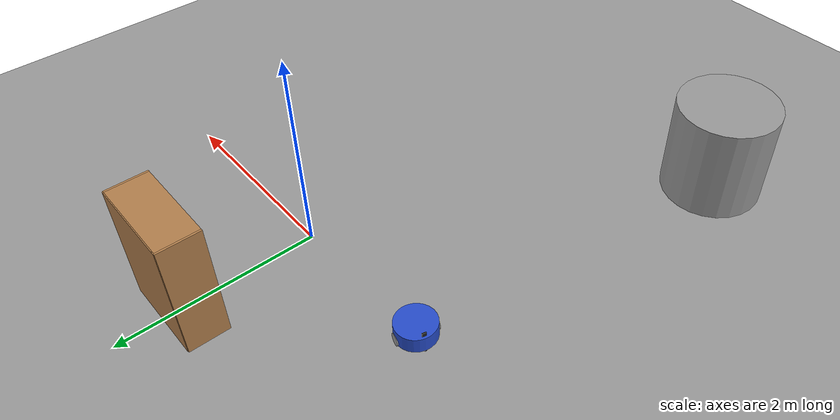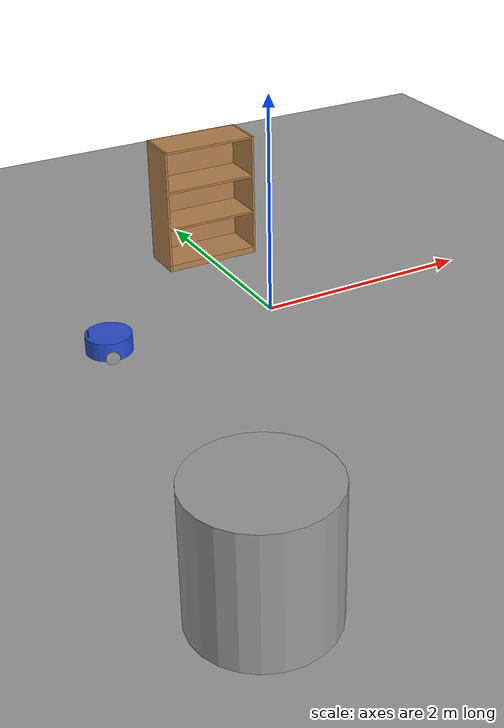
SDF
<sdf version="1.7">
 <world name="default">
  <light name="sun" type="directional">
   <pose>0 0 10 0 -0 0</pose>
   <diffuse>0.8 0.8 0.8 1</diffuse>
   <specular>0.2 0.2 0.2 1</specular>
   <attenuation>
    <range>1000</range>
    <constant>0.9</constant>
    <linear>0.01</linear>
    <quadratic>0.001</quadratic>
   </attenuation>
   <direction>0.5 0.1 -0.9</direction>
   <spot><inner_angle>0</inner_angle><outer_angle>0</outer_angle><falloff>0</falloff></spot>
  </light>
  <scene><ambient>0.4 0.4 0.4 1</ambient><background>0.7 0.7 0.7 1</background><shadows>1</shadows></scene>
  <physics type="ode">
   <max_step_size>0.01</max_step_size>
   <real_time_factor>1</real_time_factor>
   <real_time_update_rate>100</real_time_update_rate>
  </physics>
  <model name="bookshelf">
   <static>1</static>
   <link name="link">
    <inertial><mass>1</mass></inertial>
    <collision name="back">
     <pose>0 0.005 0.6 0 -0 0</pose>
     <geometry><box><size>0.9 0.01 1.2</size></box></geometry>
    </collision>
    <visual name="visual1">
     <pose>0 0.005 0.6 0 -0 0</pose>
     <geometry><box><size>0.9 0.01 1.2</size></box></geometry>
     <material>
      <script><uri>file://media/materials/scripts/gazebo.material</uri><name>Gazebo/Wood</name></script>
     </material>
    </visual>
    <collision name="left_side">
     <pose>0.45 -0.195 0.6 0 -0 0</pose>
     <geometry><box><size>0.02 0.4 1.2</size></box></geometry>
    </collision>
    <visual name="visual2">
     <pose>0.45 -0.195 0.6 0 -0 0</pose>
     <geometry><box><size>0.02 0.4 1.2</size></box></geometry>
     <material>
      <script><uri>file://media/materials/scripts/gazebo.material</uri><name>Gazebo/Wood</name></script>
     </material>
    </visual>
    <collision name="right_side">
     <pose>-0.45 -0.195 0.6 0 -0 0</pose>
     <geometry><box><size>0.02 0.4 1.2</size></box></geometry>
    </collision>
    <visual name="visual3">
     <pose>-0.45 -0.195 0.6 0 -0 0</pose>
     <geometry><box><size>0.02 0.4 1.2</size></box></geometry>
     <material>
      <script><uri>file://media/materials/scripts/gazebo.material</uri><name>Gazebo/Wood</name></script>
     </material>
    </visual>
    <collision name="bottom">
     <pose>0 -0.195 0.03 0 -0 0</pose>
     <geometry><box><size>0.88 0.4 0.06</size></box></geometry>
    </collision>
    <visual name="visual4">
     <pose>0 -0.195 0.03 0 -0 0</pose>
     <geometry><box><size>0.88 0.4 0.06</size></box></geometry>
     <material>
      <script><uri>file://media/materials/scripts/gazebo.material</uri><name>Gazebo/Wood</name></script>
     </material>
    </visual>
    <collision name="top">
     <pose>0 -0.195 1.19 0 -0 0</pose>
     <geometry><box><size>0.88 0.4 0.02</size></box></geometry>
    </collision>
    <visual name="visual5">
     <pose>0 -0.195 1.19 0 -0 0</pose>
     <geometry><box><size>0.88 0.4 0.02</size></box></geometry>
     <material>
      <script><uri>file://media/materials/scripts/gazebo.material</uri><name>Gazebo/Wood</name></script>
     </material>
    </visual>
    <collision name="low_shelf">
     <pose>0 -0.195 0.43 0 -0 0</pose>
     <geometry><box><size>0.88 0.4 0.02</size></box></geometry>
    </collision>
    <visual name="visual6">
     <pose>0 -0.195 0.43 0 -0 0</pose>
     <geometry><box><size>0.88 0.4 0.02</size></box></geometry>
     <material>
      <script><uri>file://media/materials/scripts/gazebo.material</uri><name>Gazebo/Wood</name></script>
     </material>
    </visual>
    <collision name="high_shelf">
     <pose>0 -0.195 0.8 0 -0 0</pose>
     <geometry><box><size>0.88 0.4 0.02</size></box></geometry>
    </collision>
    <visual name="visual7">
     <pose>0 -0.195 0.8 0 -0 0</pose>
     <geometry><box><size>0.88 0.4 0.02</size></box></geometry>
     <material>
      <script><uri>file://media/materials/scripts/gazebo.material</uri><name>Gazebo/Wood</name></script>
     </material>
    </visual>
    <velocity_decay><linear>0</linear><angular>0</angular></velocity_decay>
   </link>
   <pose>0 1.53026 0 0 -0 0</pose>
  </model>
  <model name="ground_plane_0">
   <static>1</static>
   <link name="link">
    <collision name="collision">
     <geometry><plane><normal>0 0 1</normal><size>100 100</size></plane></geometry>
     <surface><friction><ode><mu>100</mu><mu2>50</mu2></ode></friction></surface>
    </collision>
    <visual name="visual">
     <cast_shadows>0</cast_shadows>
     <geometry><plane><normal>0 0 1</normal><size>100 100</size></plane></geometry>
     <material>
      <script><uri>file://media/materials/scripts/gazebo.material</uri><name>Gazebo/Grey</name></script>
     </material>
    </visual>
    <velocity_decay><linear>0</linear><angular>0</angular></velocity_decay>
   </link>
   <pose>0.497681 0 0 0 -0 0</pose>
  </model>
  <model name="unit_cylinder_1">
   <pose>-2 -3.4888 0.49912 -0 -0 -0</pose>
   <link name="link">
    <inertial>
     <mass>1</mass>
     <inertia><ixx>1</ixx><ixy>0</ixy><ixz>0</ixz><iyy>1</iyy><iyz>0</iyz><izz>1</izz></inertia>
    </inertial>
    <collision name="collision">
     <geometry><cylinder><radius>0.5</radius><length>1</length></cylinder></geometry>
    </collision>
    <visual name="visual">
     <geometry><cylinder><radius>0.5</radius><length>1</length></cylinder></geometry>
     <material>
      <script><uri>file://media/materials/scripts/gazebo.material</uri><name>Gazebo/Grey</name></script>
     </material>
    </visual>
    <velocity_decay><linear>0</linear><angular>0</angular></velocity_decay>
   </link>
   <static>0</static>
  </model>
  <gravity>0 0 -9.8</gravity>
  <magnetic_field>6e-06 2.3e-05 -4.2e-05</magnetic_field>
  <atmosphere type="adiabatic"/>
  <spherical_coordinates>
   <surface_model>EARTH_WGS84</surface_model>
   <latitude_deg>0</latitude_deg>
   <longitude_deg>0</longitude_deg>
   <elevation>0</elevation>
   <heading_deg>0</heading_deg>
  </spherical_coordinates>
  <model name="mrobot">
   <link name="base_footprint">
    <inertial>
     <pose>0.015455 0 0.119091 0 -0 0</pose>
     <mass>1.1</mass>
     <inertia>
      <ixx>0.0230424</ixx>
      <ixy>0</ixy>
      <ixz>-0.00154545</ixz>
      <iyy>0.0256697</iyy>
      <iyz>0</iyz>
      <izz>0.0326273</izz>
     </inertia>
    </inertial>
    <collision name="base_footprint_fixed_joint_lump__base_link_collision">
     <pose>0 0 0.11 0 -0 0</pose>
     <geometry><cylinder><length>0.16</length><radius>0.2</radius></cylinder></geometry>
    </collision>
    <collision name="base_footprint_fixed_joint_lump__camera_link_collision_1">
     <pose>0.17 0 0.21 0 -0 0</pose>
     <geometry><box><size>0.01 0.04 0.04</size></box></geometry>
    </collision>
    <visual name="base_footprint_visual"><geometry><box><size>0.001 0.001 0.001</size></box></geometry></visual>
    <visual name="base_footprint_fixed_joint_lump__base_link_visual_1">
     <pose>0 0 0.11 0 -0 0</pose>
     <geometry><cylinder><length>0.16</length><radius>0.2</radius></cylinder></geometry>
     <material>
      <script><name>Gazebo/Blue</name><uri>file://media/materials/scripts/gazebo.material</uri></script>
     </material>
    </visual>
    <visual name="base_footprint_fixed_joint_lump__camera_link_visual_2">
     <pose>0.17 0 0.21 0 -0 0</pose>
     <geometry><box><size>0.01 0.04 0.04</size></box></geometry>
     <material>
      <script><name>Gazebo/Black</name><uri>file://media/materials/scripts/gazebo.material</uri></script>
     </material>
    </visual>
    <sensor name="camera_node" type="camera">
     <update_rate>30</update_rate>
     <camera name="head">
      <horizontal_fov>1.39626</horizontal_fov>
      <image><width>1280</width><height>720</height><format>R8G8B8</format></image>
      <clip><near>0.02</near><far>300</far></clip>
      <noise><type>gaussian</type><mean>0</mean><stddev>0.007</stddev></noise>
     </camera>
     <plugin name="gazebo_camera" filename="libgazebo_ros_camera.so">
      <alwaysOn>1</alwaysOn>
      <updateRate>0.0</updateRate>
      <cameraName>/camera</cameraName>
      <imageTopicName>image_raw</imageTopicName>
      <cameraInfoTopicName>camera_info</cameraInfoTopicName>
      <frameName>camera_link</frameName>
      <hackBaseline>0.07</hackBaseline>
      <distortionK1>0.0</distortionK1>
      <distortionK2>0.0</distortionK2>
      <distortionK3>0.0</distortionK3>
      <distortionT1>0.0</distortionT1>
      <distortionT2>0.0</distortionT2>
      <robotNamespace>/</robotNamespace>
     </plugin>
     <pose>0.17 0 0.21 0 -0 0</pose>
    </sensor>
   </link>
   <joint name="back_caster_joint" type="revolute">
    <pose relative_to="base_footprint">0.18 0 0.015 0 -0 0</pose>
    <parent>base_footprint</parent>
    <child>back_caster_link</child>
    <axis>
     <xyz>0 1 0</xyz>
     <limit><lower>-1e+16</lower><upper>1e+16</upper></limit>
     <dynamics><spring_reference>0</spring_reference><spring_stiffness>0</spring_stiffness></dynamics>
    </axis>
   </joint>
   <link name="back_caster_link">
    <pose relative_to="back_caster_joint">0 0 0 0 -0 0</pose>
    <inertial>
     <mass>0.2</mass>
     <inertia><ixx>1.8e-05</ixx><ixy>0</ixy><ixz>0</ixz><iyy>1.8e-05</iyy><iyz>0</iyz><izz>1.8e-05</izz></inertia>
    </inertial>
    <collision name="back_caster_link_collision">
     <geometry><sphere><radius>0.015</radius></sphere></geometry>
    </collision>
    <visual name="back_caster_link_visual">
     <geometry><sphere><radius>0.015</radius></sphere></geometry>
     <material>
      <script><name>Gazebo/Black</name><uri>file://media/materials/scripts/gazebo.material</uri></script>
     </material>
    </visual>
   </link>
   <joint name="front_caster_joint" type="revolute">
    <pose relative_to="base_footprint">-0.18 0 0.015 0 -0 0</pose>
    <parent>base_footprint</parent>
    <child>front_caster_link</child>
    <axis>
     <xyz>0 1 0</xyz>
     <limit><lower>-1e+16</lower><upper>1e+16</upper></limit>
     <dynamics><spring_reference>0</spring_reference><spring_stiffness>0</spring_stiffness></dynamics>
    </axis>
   </joint>
   <link name="front_caster_link">
    <pose relative_to="front_caster_joint">0 0 0 0 -0 0</pose>
    <inertial>
     <mass>0.2</mass>
     <inertia><ixx>1.8e-05</ixx><ixy>0</ixy><ixz>0</ixz><iyy>1.8e-05</iyy><iyz>0</iyz><izz>1.8e-05</izz></inertia>
    </inertial>
    <collision name="front_caster_link_collision">
     <geometry><sphere><radius>0.015</radius></sphere></geometry>
    </collision>
    <visual name="front_caster_link_visual">
     <geometry><sphere><radius>0.015</radius></sphere></geometry>
     <material>
      <script><name>Gazebo/Black</name><uri>file://media/materials/scripts/gazebo.material</uri></script>
     </material>
    </visual>
   </link>
   <joint name="left_wheel_joint" type="revolute">
    <pose relative_to="base_footprint">0 0.19 0.06 0 -0 0</pose>
    <parent>base_footprint</parent>
    <child>left_wheel_link</child>
    <axis>
     <xyz>0 1 0</xyz>
     <limit><lower>-1e+16</lower><upper>1e+16</upper></limit>
     <dynamics><spring_reference>0</spring_reference><spring_stiffness>0</spring_stiffness></dynamics>
    </axis>
   </joint>
   <link name="left_wheel_link">
    <pose relative_to="left_wheel_joint">0 0 0 0 -0 0</pose>
    <inertial>
     <mass>0.2</mass>
     <inertia>
      <ixx>0.000190417</ixx>
      <ixy>0</ixy>
      <ixz>0</ixz>
      <iyy>0.000190417</iyy>
      <iyz>0</iyz>
      <izz>0.00036</izz>
     </inertia>
    </inertial>
    <collision name="left_wheel_link_collision">
     <pose>0 0 0 1.5708 -0 0</pose>
     <geometry><cylinder><length>0.025</length><radius>0.06</radius></cylinder></geometry>
    </collision>
    <visual name="left_wheel_link_visual">
     <pose>0 0 0 1.5708 -0 0</pose>
     <geometry><cylinder><length>0.025</length><radius>0.06</radius></cylinder></geometry>
     <material>
      <script><name>Gazebo/Gray</name><uri>file://media/materials/scripts/gazebo.material</uri></script>
     </material>
    </visual>
   </link>
   <joint name="right_wheel_joint" type="revolute">
    <pose relative_to="base_footprint">0 -0.19 0.06 0 -0 0</pose>
    <parent>base_footprint</parent>
    <child>right_wheel_link</child>
    <axis>
     <xyz>0 1 0</xyz>
     <limit><lower>-1e+16</lower><upper>1e+16</upper></limit>
     <dynamics><spring_reference>0</spring_reference><spring_stiffness>0</spring_stiffness></dynamics>
    </axis>
   </joint>
   <link name="right_wheel_link">
    <pose relative_to="right_wheel_joint">0 0 0 0 -0 0</pose>
    <inertial>
     <mass>0.2</mass>
     <inertia>
      <ixx>0.000190417</ixx>
      <ixy>0</ixy>
      <ixz>0</ixz>
      <iyy>0.000190417</iyy>
      <iyz>0</iyz>
      <izz>0.00036</izz>
     </inertia>
    </inertial>
    <collision name="right_wheel_link_collision">
     <pose>0 0 0 1.5708 -0 0</pose>
     <geometry><cylinder><length>0.025</length><radius>0.06</radius></cylinder></geometry>
    </collision>
    <visual name="right_wheel_link_visual">
     <pose>0 0 0 1.5708 -0 0</pose>
     <geometry><cylinder><length>0.025</length><radius>0.06</radius></cylinder></geometry>
     <material>
      <script><name>Gazebo/Gray</name><uri>file://media/materials/scripts/gazebo.material</uri></script>
     </material>
    </visual>
   </link>
   <plugin name="differential_drive_controller" filename="libgazebo_ros_diff_drive.so">
    <rosDebugLevel>Debug</rosDebugLevel>
    <publishWheelTF>1</publishWheelTF>
    <robotNamespace>/</robotNamespace>
    <publishTf>1</publishTf>
    <publishOdomTF>1</publishOdomTF>
    <publishWheelJointState>1</publishWheelJointState>
    <alwaysOn>1</alwaysOn>
    <updateRate>100.0</updateRate>
    <legacyMode>1</legacyMode>
    <leftJoint>left_wheel_joint</leftJoint>
    <rightJoint>right_wheel_joint</rightJoint>
    <wheelSeparation>0.38</wheelSeparation>
    <wheelDiameter>0.12</wheelDiameter>
    <broadcastTF>1</broadcastTF>
    <wheelTorque>30</wheelTorque>
    <wheelAcceleration>1.8</wheelAcceleration>
    <commandTopic>cmd_vel</commandTopic>
    <odometryFrame>odom</odometryFrame>
    <odometryTopic>odom</odometryTopic>
    <odometrySourece>1</odometrySourece>
    <robotBaseFrame>base_footprint</robotBaseFrame>
   </plugin>
   <frame name="camera_joint" attached_to="base_link"><pose>0.17 0 0.1 0 -0 0</pose></frame>
   <frame name="camera_link" attached_to="camera_joint"/>
   <frame name="base_footprint_joint" attached_to="base_footprint"><pose>0 0 0.11 0 -0 0</pose></frame>
   <frame name="base_link" attached_to="base_footprint_joint"/>
   <pose>-1.56665 -0.025766 2e-06 9e-06 1e-06 2.89887</pose>
  </model>
 </world>
</sdf>
